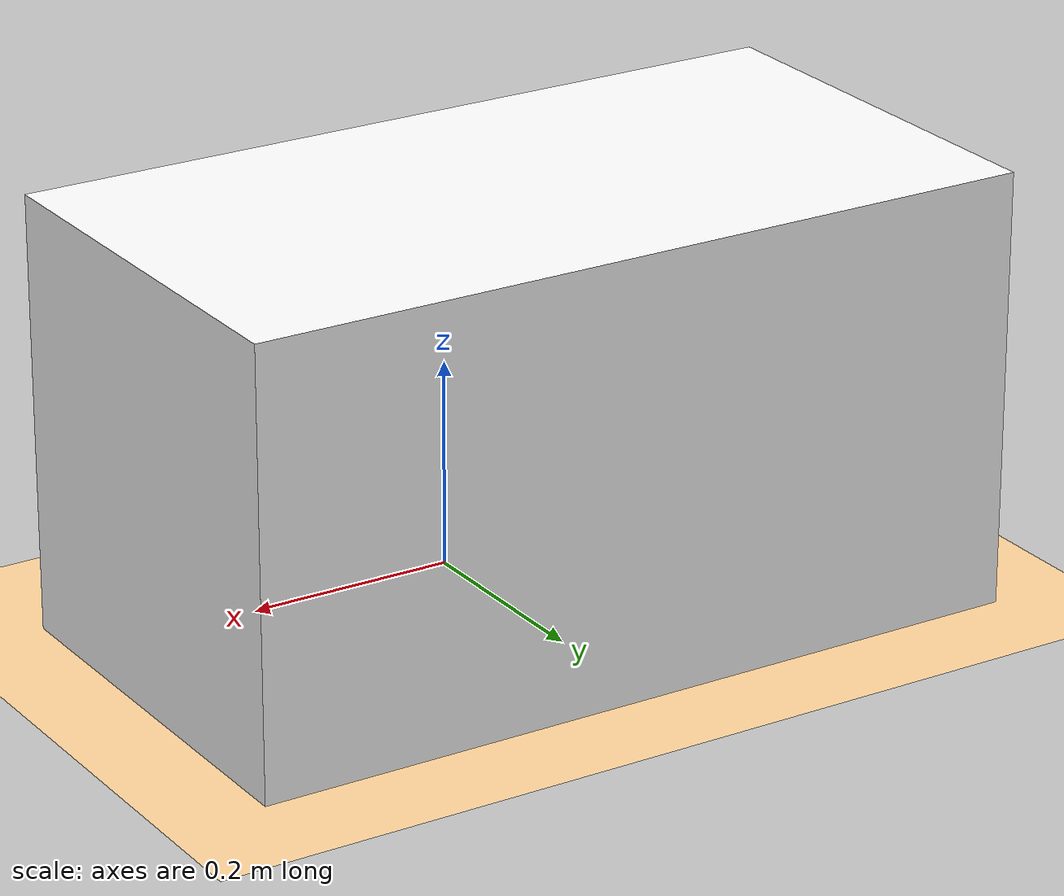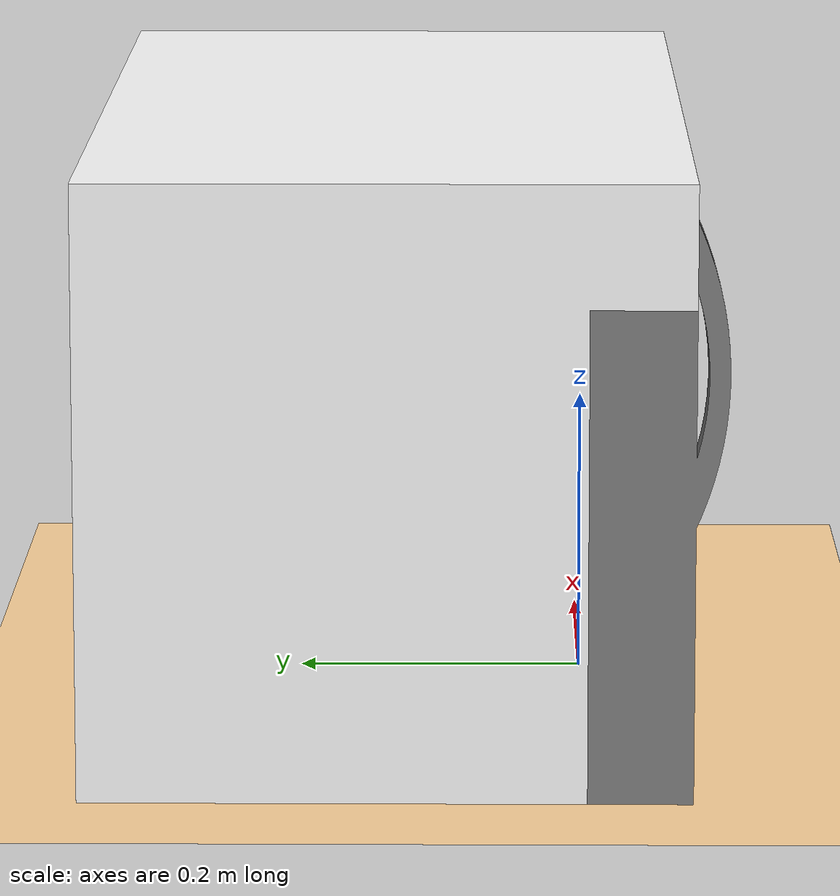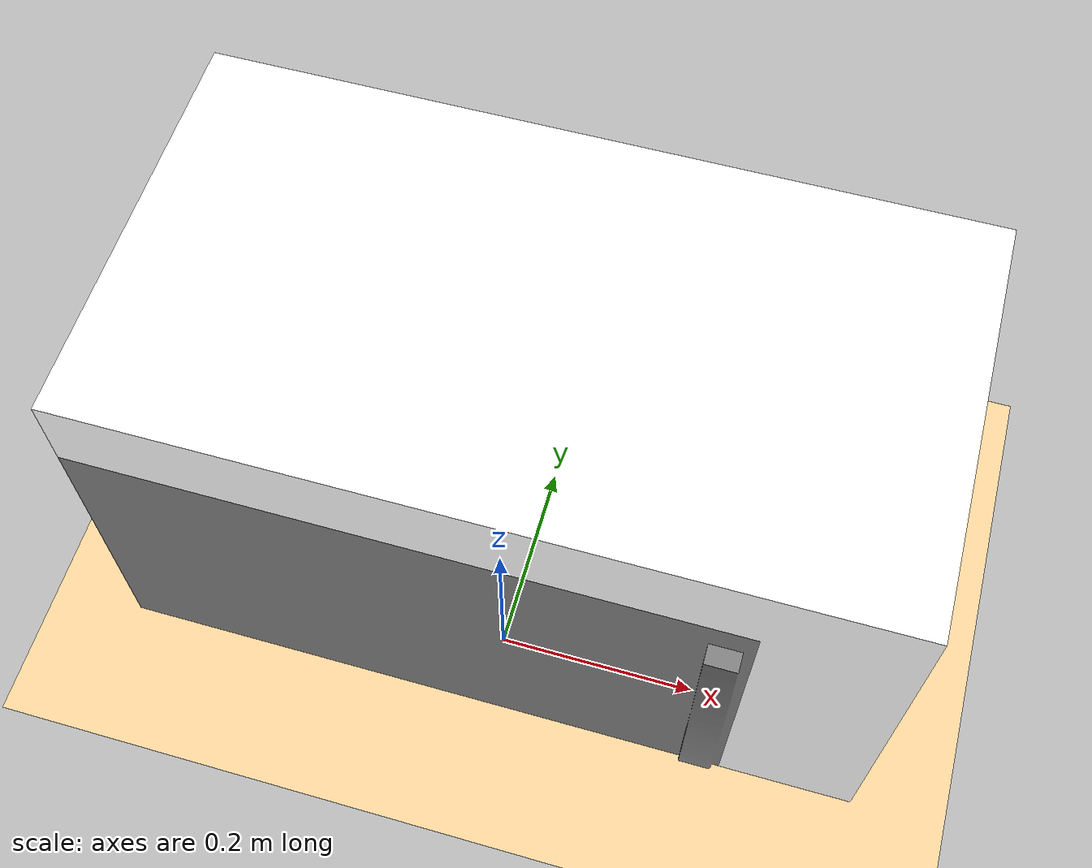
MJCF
<mujoco model="Microwave">
    <compiler angle="radian" />
    <asset>
        <mesh name="BaseJoint" file="meshes/BaseJoint.stl" scale="0.001 0.001 0.001" />
        <mesh name="Base" file="meshes/Base.stl" scale="0.001 0.001 0.001" />
    </asset>

    <worldbody>
        <light directional="true" pos="-0.5 0.5 3" dir="0 0 -1" />
        <geom pos="0 0 0" size="1 1 1" type="plane" rgba="1 0.83 0.61 0.5" />
        <body name="Base" pos="0.0 0.0 0.0" euler="-0.0 0.0 -0.0">

            <geom name="Base_visual" type="mesh" mesh="Base"
                contype="0" conaffinity="0" group="1" rgba="1 1 1 1"/>

            <geom name="c_floor" type="box" pos="0 0 -0.15" size="0.3 0.3 0.01" rgba="1 0 0 0.2" group="3"/>
            <geom name="c_ceil"  type="box" pos="0 0 0.15"  size="0.3 0.3 0.01" rgba="1 0 0 0.2" group="3"/>
            <geom name="c_back"  type="box" pos="-0.15 0 0" size="0.01 0.3 0.15" rgba="1 0 0 0.2" group="3"/>
            <geom name="c_left"  type="box" pos="0 0.15 0"  size="0.3 0.01 0.15" rgba="1 0 0 0.2" group="3"/>
            <geom name="c_right" type="box" pos="0 -0.15 0" size="0.3 0.01 0.15" rgba="1 0 0 0.2" group="3"/>

            <inertial mass="605.03" pos="0.04 0.16 0.23" fullinertia="18.8 44.9 42.3 1.7 1.8 1.1" />

            <body name="BaseJoint" pos="0.0 0.0 0.0" euler="-0.0 0.0 -0.0">
                <joint name="Base_Joint1" type="hinge" axis="0.0 0.0 1.0" pos="-0.377825 0.0 0.165225" />

                <geom name="BaseJoint_geom" type="mesh" mesh="BaseJoint" />

                <inertial mass="113.97" pos="-0.06 -0.03 0.16" fullinertia="1.08 4.77 3.79 0.02 -0.002 0.0006" />
            </body>
        </body>
    </worldbody>
</mujoco>
